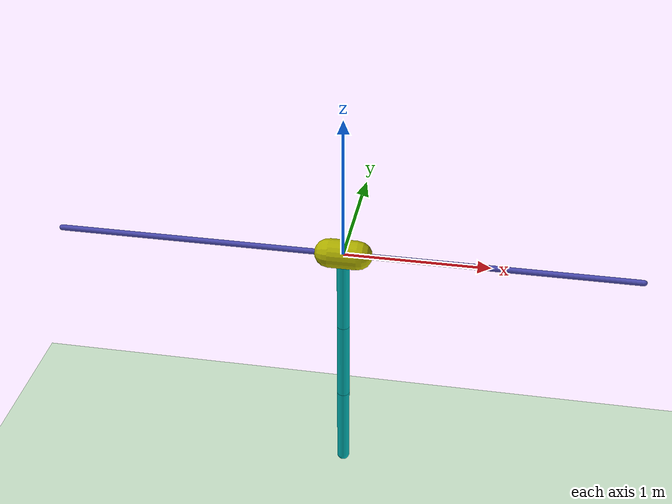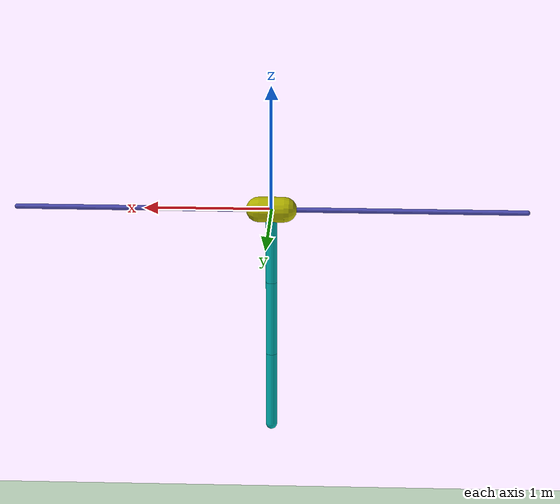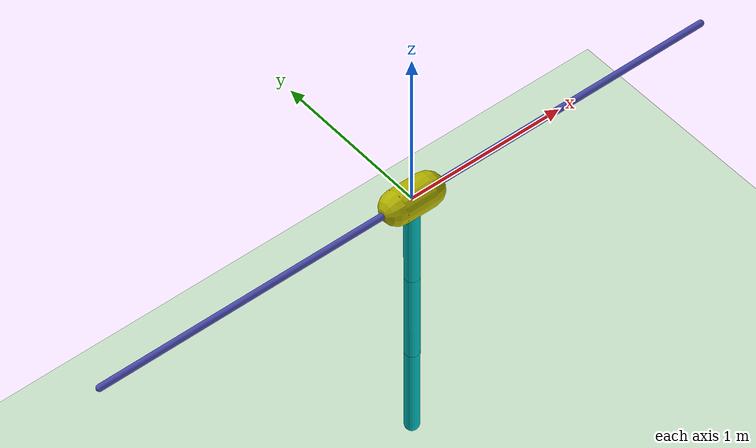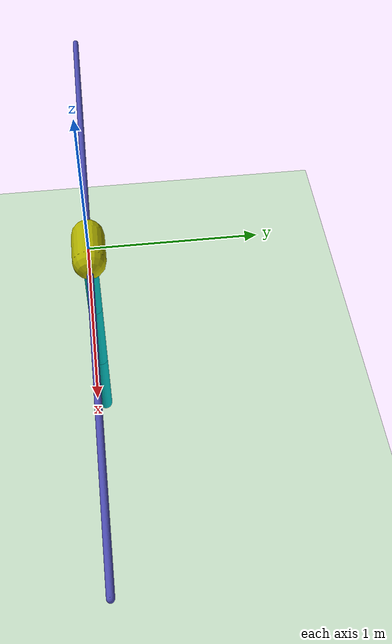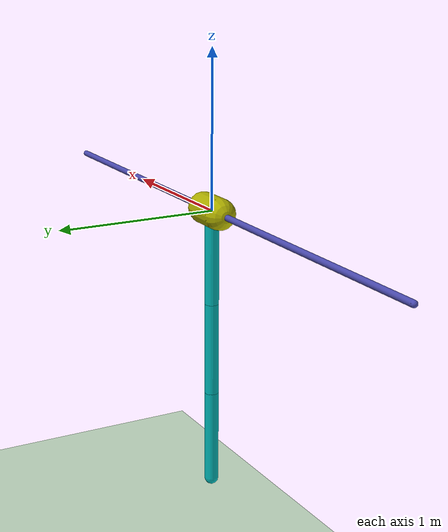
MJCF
<mujoco model="cartpole">
  <compiler coordinate="local" inertiafromgeom="true"/>
  <custom>
    <numeric data="2" name="frame_skip"/>
  </custom>
  <default>
    <joint damping="0.01"/>
    <geom contype="0" friction="1 0.1 0.1" rgba="0.7 0.7 0 1"/>
  </default>
  <option gravity="1e-5 0 -9.81" integrator="RK4" timestep="0.01"/>
  <size nstack="3000"/>
  <worldbody>
    <geom name="floor" pos="0 0 -3.0" rgba="0.8 0.9 0.8 1" size="40 40 40" type="plane"/>
    <geom name="rail" pos="0 0 0" quat="0.707 0 0.707 0" rgba="0.3 0.3 0.7 1" size="0.02 2" type="capsule"/>
    <body name="cart" pos="0 0 0">
      <joint axis="1 0 0" limited="true" margin="0.01" name="slider" pos="0 0 0" range="-2 2" type="slide"/>
      <geom name="cart" pos="0 0 0" quat="0.707 0 0.707 0" size="0.1 0.1" type="capsule"/>
      <body name="pole" pos="0 0 0">
        <joint axis="0 1 0" name="hinge" pos="0 0 0" type="hinge"/>
        <geom fromto="0 0 0 0 0 -0.6" name="cpole" rgba="0 0.7 0.7 1" size="0.045 0.3" type="capsule"/>
        <body name="pole2" pos="0 0 -0.6">
          <joint axis="0 1 0" name="hinge2" pos="0 0 0" type="hinge"/>
          <geom fromto="0 0 0 0 0 -0.6" name="cpole2" rgba="0 0.7 0.7 1" size="0.045 0.3" type="capsule"/>
          <body name="pole3" pos="0 0 -0.6">
            <joint axis="0 1 0" name="hinge3" pos="0 0 0" type="hinge"/>
            <geom fromto="0 0 0 0 0 -0.6" name="cpole3" rgba="0 0.7 0.7 1" size="0.045 0.3" type="capsule"/>
            <site name="tip" pos="0 0 -0.6" size="0.01 0.01"/>
          </body>
        </body>
      </body>
    </body>
  </worldbody>
  <actuator>
    <motor ctrllimited="true" ctrlrange="-2 2" gear="500" joint="slider" name="slide"/>
  </actuator>
</mujoco>
